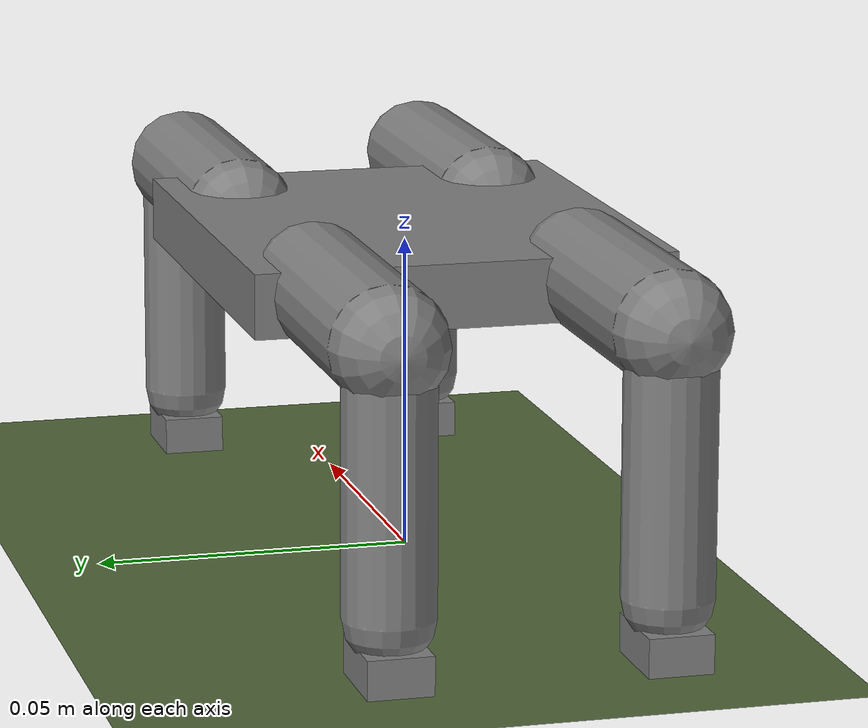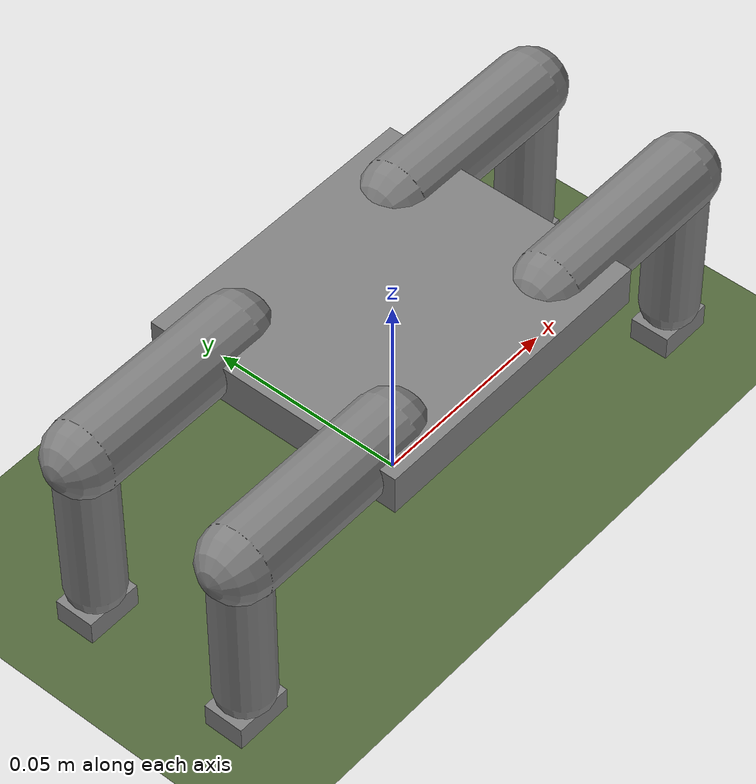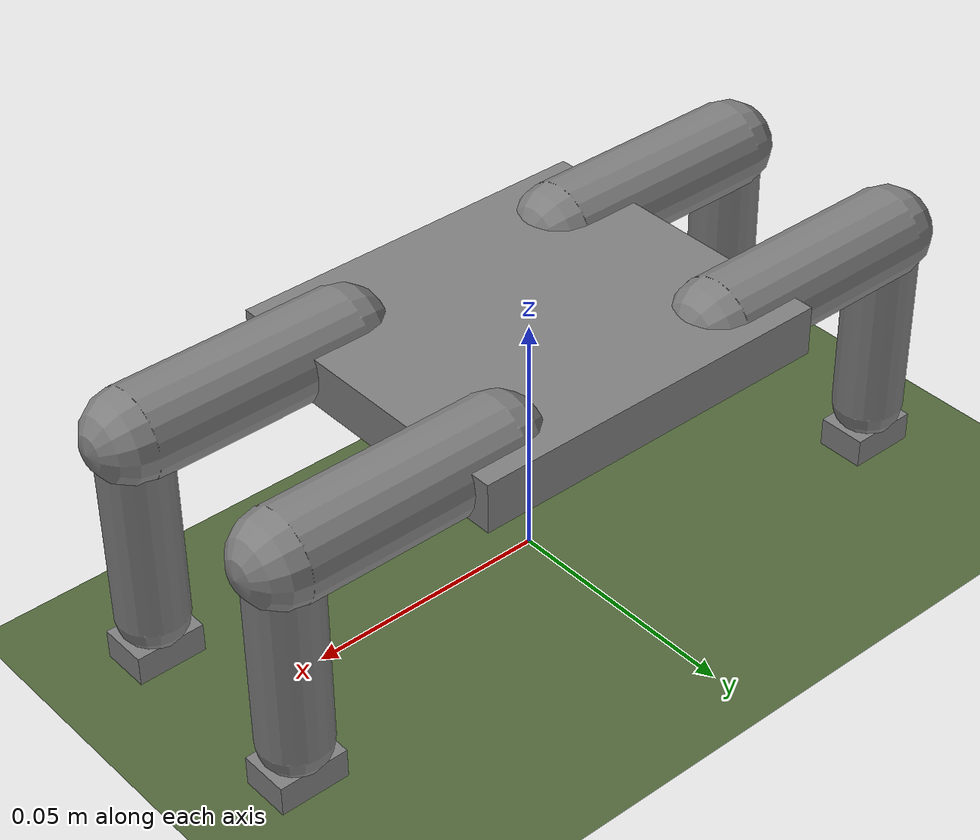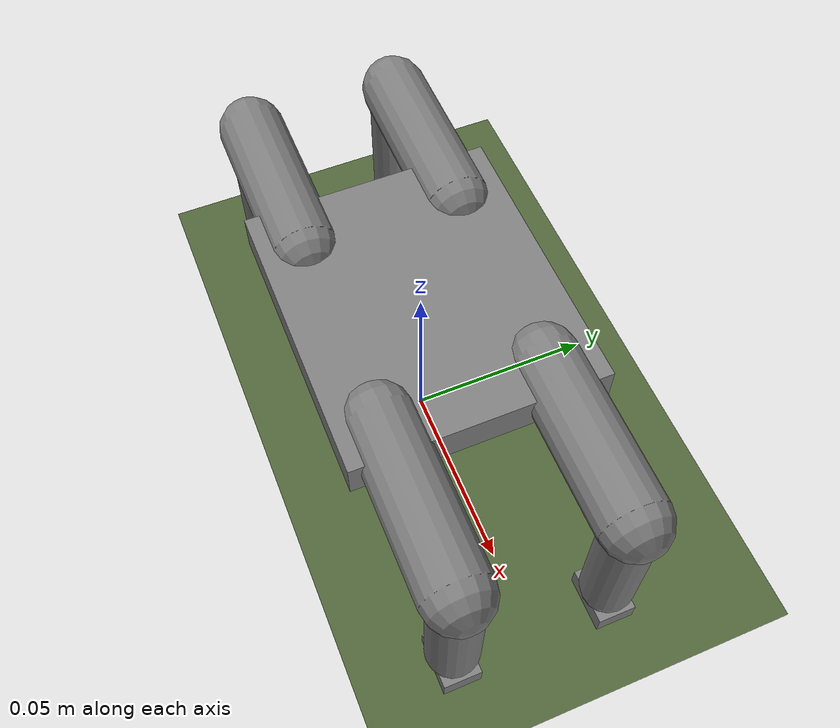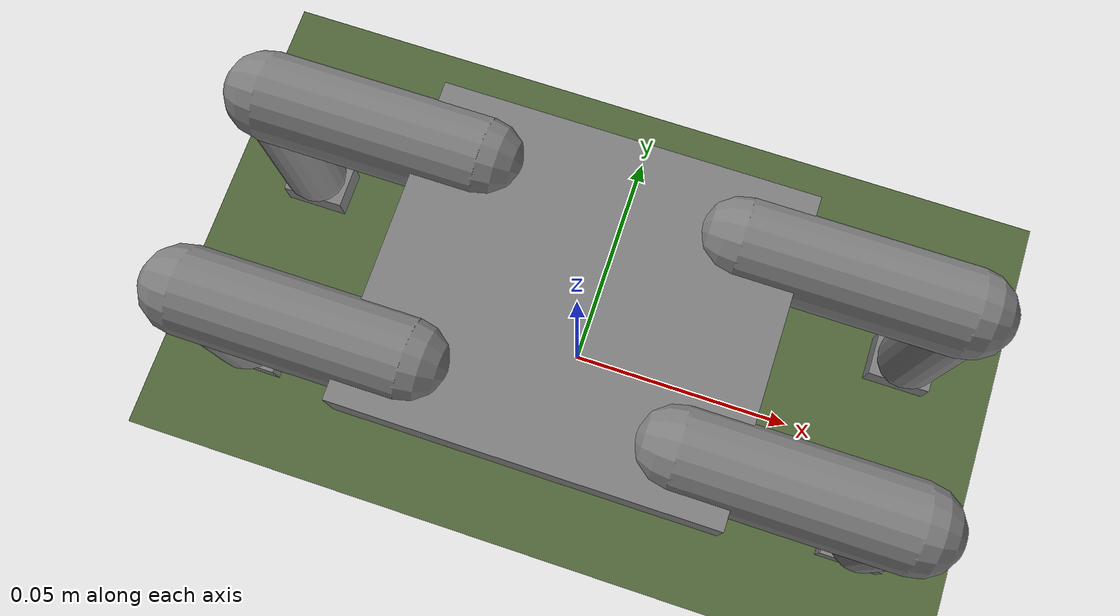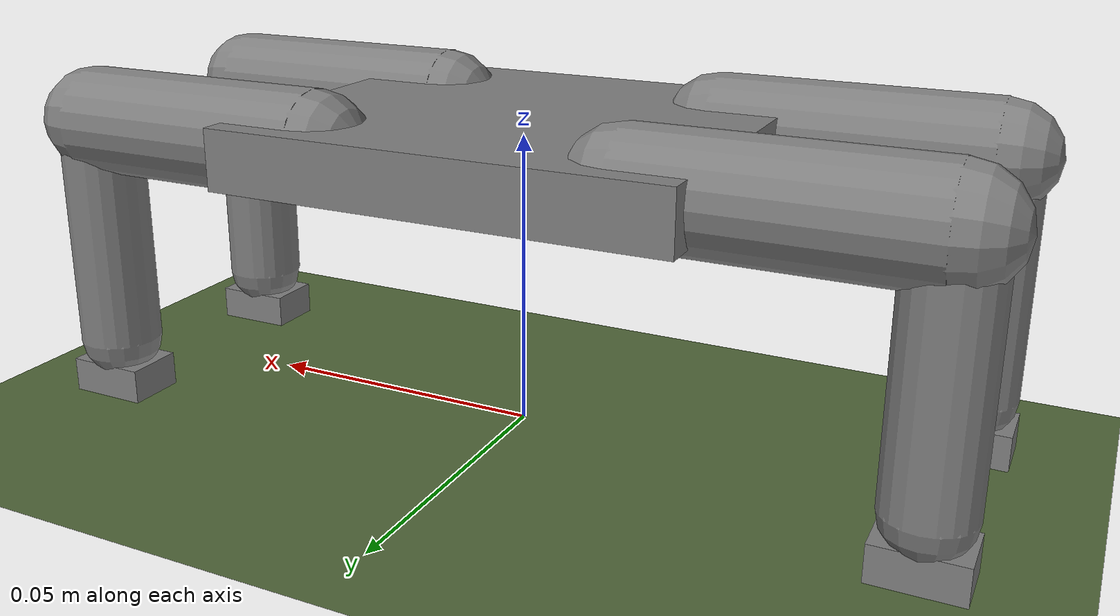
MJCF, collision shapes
<mujoco model="q1lite">
  <compiler angle="radian" meshdir="." autolimits="true"/>
  <option impratio="10" cone="elliptic" solver="Newton" iterations="100"/>
  <visual><global offwidth="1280" offheight="720"/></visual>

  <default>
    <geom friction="0.8 0.01 0.01" condim="3" margin="0.001"/>
    <joint damping="0.02" armature="0.002" frictionloss="0.05"/>
    <motor ctrlrange="-0.25 0.25"/>
    <default class="visual"><geom type="mesh" group="2" contype="0" conaffinity="0"/></default>
    <default class="collision"><geom group="3"/></default>
    <default class="foot"><geom type="box" size="0.007 0.005 0.003" group="3" priority="2" solimp="0.9 0.99 0.001" solref="0.008 1" friction="4.0 0.4 0.02" condim="6"/></default>
  </default>

  <asset>
    <material name="body_color" rgba="0.85 0.35 0.30 1"/>
    <material name="leg_color"  rgba="0.25 0.45 0.60 1"/>
    <material name="foot_color" rgba="0.15 0.15 0.18 1"/>
    <texture type="2d" name="groundplane" builtin="checker" rgb1="0.28 0.38 0.2" rgb2="0.35 0.42 0.25" width="512" height="512"/>
    <material name="groundplane" texture="groundplane" texuniform="true" texrepeat="10 10" reflectance="0.05"/>
    <mesh name="body"  file="body.stl" scale="0.001 0.001 0.001"/>
    <mesh name="leg1"  file="leg1.stl" scale="0.001 0.001 0.001"/>
    <mesh name="leg1m" file="leg1_mirror.stl" scale="0.001 0.001 0.001"/>
    <mesh name="leg2"  file="leg2.stl" scale="0.001 0.001 0.001"/>
    <mesh name="leg2m" file="leg2_mirror.stl" scale="0.001 0.001 0.001"/>
  </asset>

  <worldbody>
    <light directional="true" diffuse="0.8 0.8 0.8" specular="0.2 0.2 0.2" pos="0 0 1" dir="0 0 -1"/>
    <geom name="floor" type="plane" size="0 0 0.05" material="groundplane"/>

    <body name="base" pos="0 0 0.044">
      <freejoint/>
      <inertial mass="0.080" pos="0 0 0.003" diaginertia="0.00006 0.00005 0.00009"/>
      <geom mesh="body" material="body_color" class="visual"/>
      <geom type="box" size="0.038 0.033 0.005" class="collision" pos="0 0 0.005"/>
      <!-- Chase camera for the interactive viewer (rear 3/4 view) -->
      <camera name="chase" mode="targetbody" target="base" pos="0 -0.22 0.22" fovy="50"/>
      <!-- Forward-facing eyes for the vision bridge: look along +Y (forward),
           90 deg FOV — same contract as the Go2 eye cameras -->
      <camera name="eye_left"  pos="-0.015 0.040 0.006" xyaxes="1 0 0 0 0 1" fovy="90"/>
      <camera name="eye_right" pos="0.015 0.040 0.006" xyaxes="1 0 0 0 0 1" fovy="90"/>

      <!-- ================= RIGHT legs (validated correct - unchanged) ================= -->
      <body name="FR_shoulder" pos="0.026000 0.021000 0.006000">
        <joint name="FR_hip_joint" axis="0 0 1" range="-1.7 1.7"/>
        <inertial mass="0.018" pos="0.022500 0 0" diaginertia="0.000008 0.000008 0.000002"/>
        <geom mesh="leg1m" material="leg_color" class="visual" quat="0.382700 0.923900 0.000000 0.000000" pos="0.028000 -0.009000 0.029000"/>
        <geom type="capsule" fromto="0 0 0 0.045000 0 0" size="0.009" class="collision"/>
        <body name="FR_upper" pos="0.045000 0 0">
          <joint name="FR_knee_joint" axis="0 1 0" range="-1.6 1.6"/>
          <inertial mass="0.006" pos="0 0 -0.022" diaginertia="0.000006 0.000006 0.000001"/>
          <geom mesh="leg2" material="foot_color" class="visual" quat="0.270600 -0.270600 0.653300 0.653300" pos="0.004000 -0.006000 -0.013000"/>
          <geom type="capsule" fromto="0 0 0 0 0 -0.040" size="0.007" class="collision"/>
          <geom class="foot" pos="0 0 -0.047"/>
        </body>
      </body>

      <body name="RR_shoulder" pos="0.026000 -0.021000 0.006000">
        <joint name="RR_hip_joint" axis="0 0 1" range="-1.7 1.7"/>
        <inertial mass="0.018" pos="0.022500 0 0" diaginertia="0.000008 0.000008 0.000002"/>
        <geom mesh="leg1" material="leg_color" class="visual" quat="0.382700 -0.923900 0.000000 0.000000" pos="0.029000 -0.014000 0.006000"/>
        <geom type="capsule" fromto="0 0 0 0.045000 0 0" size="0.009" class="collision"/>
        <body name="RR_upper" pos="0.045000 0 0">
          <joint name="RR_knee_joint" axis="0 1 0" range="-1.6 1.6"/>
          <inertial mass="0.006" pos="0 0 -0.022" diaginertia="0.000006 0.000006 0.000001"/>
          <geom mesh="leg2m" material="foot_color" class="visual" quat="0.653300 0.653300 -0.270600 0.270600" pos="0.004000 0.006000 -0.013000"/>
          <geom type="capsule" fromto="0 0 0 0 0 -0.040" size="0.007" class="collision"/>
          <geom class="foot" pos="0 0 -0.047"/>
        </body>
      </body>

      <body name="FL_shoulder" pos="-0.026000 0.021000 0.006000" quat="0 0 0 1">
        <joint name="FL_hip_joint" axis="0 0 1" range="-1.7 1.7"/>
        <inertial mass="0.018" pos="0.022500 0 0" diaginertia="0.000008 0.000008 0.000002"/>
        <geom mesh="leg1" material="leg_color" class="visual" quat="0.382700 -0.923900 0.000000 0.000000" pos="0.029000 -0.014000 0.006000"/>
        <geom type="capsule" fromto="0 0 0 0.045000 0 0" size="0.009" class="collision"/>
        <body name="FL_upper" pos="0.045000 0 0">
          <joint name="FL_knee_joint" axis="0 1 0" range="-1.6 1.6"/>
          <inertial mass="0.006" pos="0 0 -0.022" diaginertia="0.000006 0.000006 0.000001"/>
          <geom mesh="leg2m" material="foot_color" class="visual" quat="0.653300 0.653300 -0.270600 0.270600" pos="0.004000 0.006000 -0.013000"/>
          <geom type="capsule" fromto="0 0 0 0 0 -0.040" size="0.007" class="collision"/>
          <geom class="foot" pos="0 0 -0.047"/>
        </body>
      </body>

      <body name="RL_shoulder" pos="-0.026000 -0.021000 0.006000" quat="0 0 0 1">
        <joint name="RL_hip_joint" axis="0 0 1" range="-1.7 1.7"/>
        <inertial mass="0.018" pos="0.022500 0 0" diaginertia="0.000008 0.000008 0.000002"/>
        <geom mesh="leg1m" material="leg_color" class="visual" quat="0.382700 0.923900 0.000000 0.000000" pos="0.028000 -0.009000 0.029000"/>
        <geom type="capsule" fromto="0 0 0 0.045000 0 0" size="0.009" class="collision"/>
        <body name="RL_upper" pos="0.045000 0 0">
          <joint name="RL_knee_joint" axis="0 1 0" range="-1.6 1.6"/>
          <inertial mass="0.006" pos="0 0 -0.022" diaginertia="0.000006 0.000006 0.000001"/>
          <geom mesh="leg2" material="foot_color" class="visual" quat="0.270600 -0.270600 0.653300 0.653300" pos="0.004000 -0.006000 -0.013000"/>
          <geom type="capsule" fromto="0 0 0 0 0 -0.040" size="0.007" class="collision"/>
          <geom class="foot" pos="0 0 -0.047"/>
        </body>
      </body>
    </body>
  </worldbody>

  <actuator>
    <motor name="FR_hip" joint="FR_hip_joint"/><motor name="FR_knee" joint="FR_knee_joint"/>
    <motor name="RR_hip" joint="RR_hip_joint"/><motor name="RR_knee" joint="RR_knee_joint"/>
    <motor name="FL_hip" joint="FL_hip_joint"/><motor name="FL_knee" joint="FL_knee_joint"/>
    <motor name="RL_hip" joint="RL_hip_joint"/><motor name="RL_knee" joint="RL_knee_joint"/>
  </actuator>

  <keyframe>
    <!-- standby (official firmware pose): FR +45, RR -45, FL -45, RL +45 deg, knees 0
         qpos order: FR_hip FR_knee  RR_hip RR_knee  FL_hip FL_knee  RL_hip RL_knee -->
    <key name="stand" qpos="0 0 0.044 1 0 0 0  0.785 0  -0.785 0  -0.785 0  0.785 0"/>
    <!-- model zero: all servos at zero (legs sprawl along +/-X, lower legs vertical) -->
    <key name="zero" qpos="0 0 0.044 1 0 0 0  0 0 0 0 0 0 0 0"/>
  </keyframe>
</mujoco>
